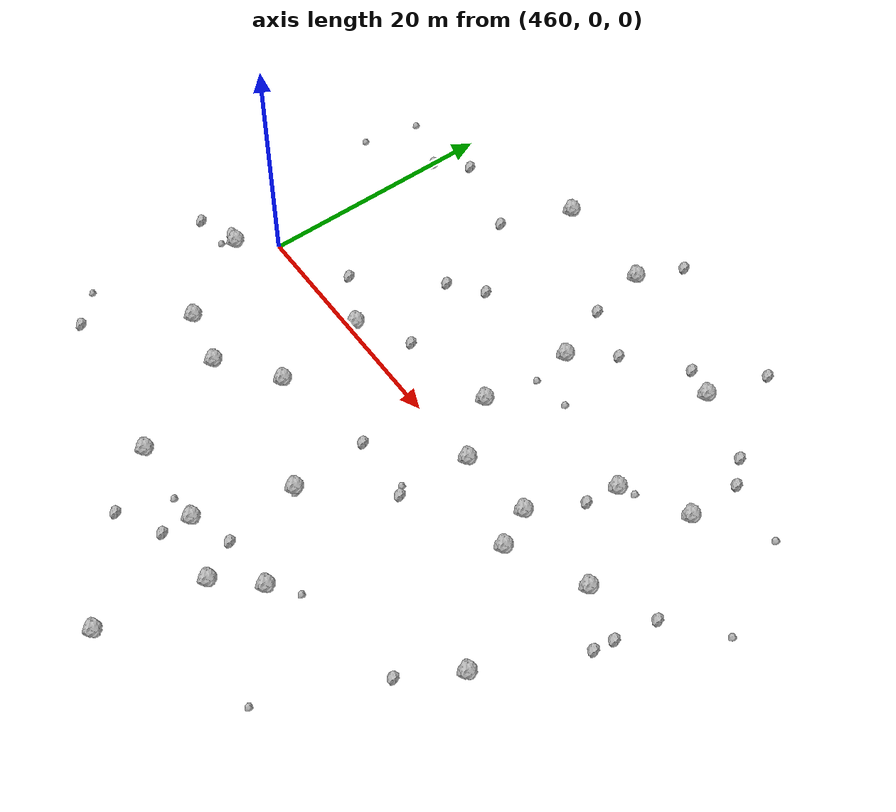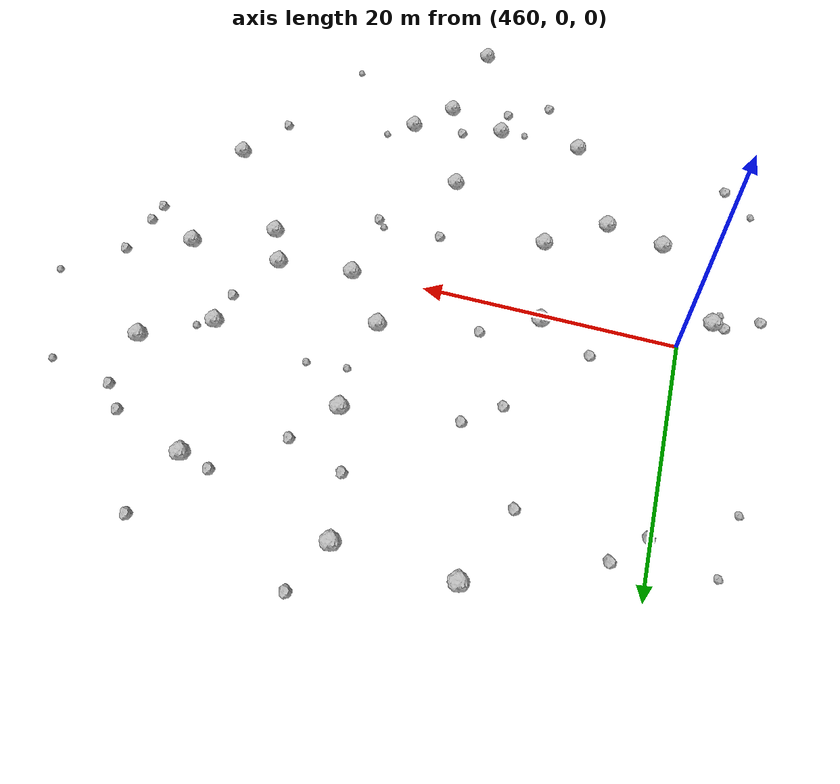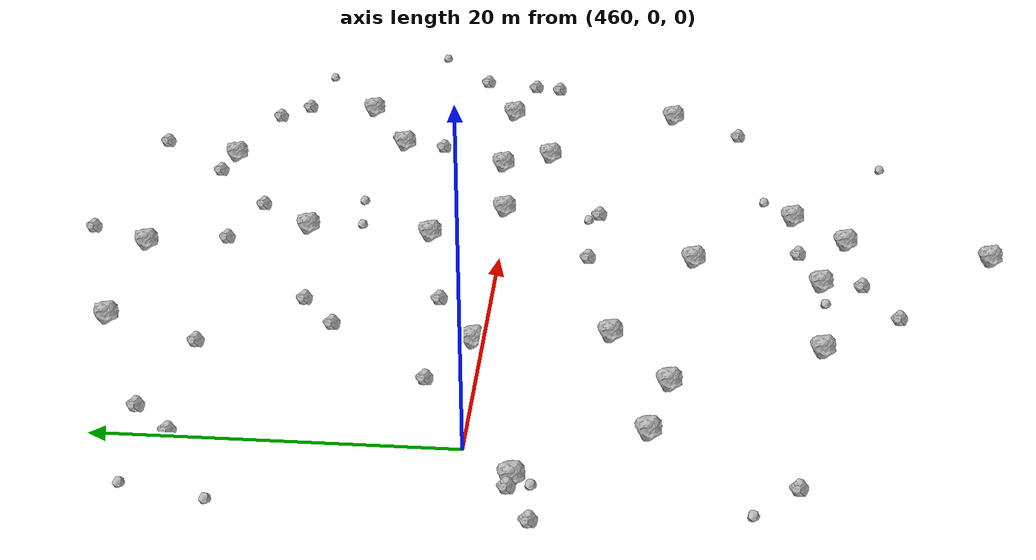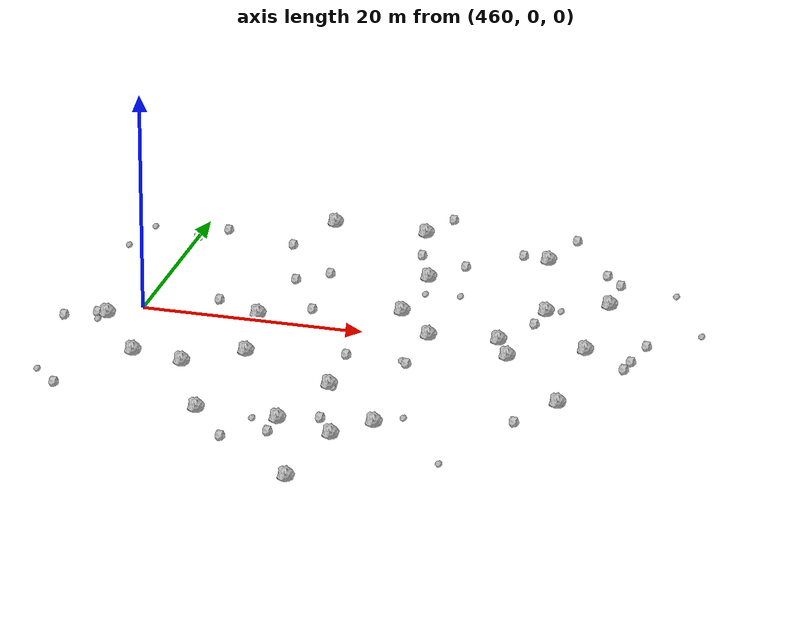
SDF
<sdf version="1.6">
 <world name="default">
  <include><uri>model://sun</uri></include>
  <model name="rock1_12_4">
   <include><uri>model://rock1</uri><pose>499.80383578167346 0.8082794287217787 0.5 0 0 0</pose></include>
  </model>
  <model name="rock1_12_5">
   <include><uri>model://rock1</uri><pose>499.6729726960399 10.672696156044239 0.5 0 0 0</pose></include>
  </model>
  <model name="rock1_12_6">
   <include><uri>model://rock1</uri><pose>492.0641143444364 0.8792199120641868 0.5 0 0 0</pose></include>
  </model>
  <model name="rock1_12_7">
   <include><uri>model://rock1</uri><pose>485.9526224685999 0.23629088025637657 0.5 0 0 0</pose></include>
  </model>
  <model name="rock1_12_8">
   <include><uri>model://rock1</uri><pose>479.9643023352144 21.920231082274057 0.5 0 0 0</pose></include>
  </model>
  <model name="rock1_12_9">
   <include><uri>model://rock1</uri><pose>482.3958565108509 4.5669969244764985 0.5 0 0 0</pose></include>
  </model>
  <model name="rock1_12_10">
   <include><uri>model://rock1</uri><pose>480.44825305162715 -11.846455012147668 0.5 0 0 0</pose></include>
  </model>
  <model name="rock1_12_11">
   <include><uri>model://rock1</uri><pose>483.2498074785723 -21.19223633733783 0.5 0 0 0</pose></include>
  </model>
  <model name="rock1_12_12">
   <include><uri>model://rock1</uri><pose>470.39427499492746 0.604859064650821 0.5 0 0 0</pose></include>
  </model>
  <model name="rock1_12_13">
   <include><uri>model://rock1</uri><pose>457.6143570755785 -2.7554110209737743 0.5 0 0 0</pose></include>
  </model>
  <model name="rock1_12_14">
   <include><uri>model://rock1</uri><pose>493.5859015132169 -2.1456100347031892 0.5 0 0 0</pose></include>
  </model>
  <model name="rock1_12_15">
   <include><uri>model://rock1</uri><pose>471.6458113379914 -7.184664122847316 0.5 0 0 0</pose></include>
  </model>
  <model name="rock1_12_16">
   <include><uri>model://rock1</uri><pose>494.6150053115148 7.817946095866567 0.5 0 0 0</pose></include>
  </model>
  <model name="rock1_12_17">
   <include><uri>model://rock1</uri><pose>492.16271287085993 18.8461210487514 0.5 0 0 0</pose></include>
  </model>
  <model name="rock1_12_18">
   <include><uri>model://rock1</uri><pose>478.13415540013625 -19.465455060185022 0.5 0 0 0</pose></include>
  </model>
  <model name="rock1_12_19">
   <include><uri>model://rock1</uri><pose>470.9166484450568 -19.23757958963101 0.5 0 0 0</pose></include>
  </model>
  <model name="rock1_12_20">
   <include><uri>model://rock1</uri><pose>471.34002211636937 22.090935653440475 0.5 0 0 0</pose></include>
  </model>
  <model name="rock1_12_21">
   <include><uri>model://rock1</uri><pose>462.1959720693229 -9.636172189741771 0.5 0 0 0</pose></include>
  </model>
  <model name="rock1_12_22">
   <include><uri>model://rock1</uri><pose>486.10835087408236 -18.03271562529055 0.5 0 0 0</pose></include>
  </model>
  <model name="rock1_12_23">
   <include><uri>model://rock1</uri><pose>466.92074521230603 -10.64090655474827 0.5 0 0 0</pose></include>
  </model>
  <model name="rock1_12_24">
   <include><uri>model://rock1</uri><pose>481.94162868176204 -29.88847477265042 0.5 0 0 0</pose></include>
  </model>
  <model name="rock1_12_25">
   <include><uri>model://rock1</uri><pose>482.75353789399514 12.300874487955376 0.5 0 0 0</pose></include>
  </model>
  <model name="rock1_12_26">
   <include><uri>model://rock1</uri><pose>500.015780791032 -10.263997618852528 0.5 0 0 0</pose></include>
  </model>
  <model name="rock2_12_0">
   <include><uri>model://rock2</uri><pose>485.3223523668847 15.653023302167114 0.3 0 0 0</pose></include>
  </model>
  <model name="rock2_12_1">
   <include><uri>model://rock2</uri><pose>457.66125397847486 -17.409460358360313 0.3 0 0 0</pose></include>
  </model>
  <model name="rock2_12_2">
   <include><uri>model://rock2</uri><pose>493.6371839267754 23.924704659023902 0.3 0 0 0</pose></include>
  </model>
  <model name="rock2_12_3">
   <include><uri>model://rock2</uri><pose>471.4388393121767 8.899159118474081 0.3 0 0 0</pose></include>
  </model>
  <model name="rock2_12_4">
   <include><uri>model://rock2</uri><pose>456.68644730927105 -2.581448337804357 0.3 0 0 0</pose></include>
  </model>
  <model name="rock2_12_5">
   <include><uri>model://rock2</uri><pose>499.6513069646777 15.218757769939934 0.3 0 0 0</pose></include>
  </model>
  <model name="rock2_12_6">
   <include><uri>model://rock2</uri><pose>474.6486409146683 3.0431646925096203 0.3 0 0 0</pose></include>
  </model>
  <model name="rock2_12_7">
   <include><uri>model://rock2</uri><pose>489.7447354503136 19.418595024812056 0.3 0 0 0</pose></include>
  </model>
  <model name="rock2_12_8">
   <include><uri>model://rock2</uri><pose>466.1888729694615 2.8254173641150615 0.3 0 0 0</pose></include>
  </model>
  <model name="rock2_12_9">
   <include><uri>model://rock2</uri><pose>494.2301572888314 5.125561903107709 0.3 0 0 0</pose></include>
  </model>
  <model name="rock2_12_10">
   <include><uri>model://rock2</uri><pose>477.98691080046893 -21.885871808806755 0.3 0 0 0</pose></include>
  </model>
  <model name="rock2_12_11">
   <include><uri>model://rock2</uri><pose>503.8559990014188 -2.0643600415037966 0.3 0 0 0</pose></include>
  </model>
  <model name="rock2_12_12">
   <include><uri>model://rock2</uri><pose>454.0303263692032 -3.916212830883584 0.3 0 0 0</pose></include>
  </model>
  <model name="rock2_12_13">
   <include><uri>model://rock2</uri><pose>474.0407626443177 10.973103619810516 0.3 0 0 0</pose></include>
  </model>
  <model name="rock2_12_14">
   <include><uri>model://rock2</uri><pose>485.5919474825659 -5.828751039520739 0.3 0 0 0</pose></include>
  </model>
  <model name="rock2_12_15">
   <include><uri>model://rock2</uri><pose>480.8866511184072 17.08525413048679 0.3 0 0 0</pose></include>
  </model>
  <model name="rock2_12_16">
   <include><uri>model://rock2</uri><pose>480.13801638915476 -5.4130867907825575 0.3 0 0 0</pose></include>
  </model>
  <model name="rock2_12_17">
   <include><uri>model://rock2</uri><pose>462.3903627032696 18.053645750125334 0.3 0 0 0</pose></include>
  </model>
  <model name="rock2_12_18">
   <include><uri>model://rock2</uri><pose>481.5906310290934 25.71110288076398 0.3 0 0 0</pose></include>
  </model>
  <model name="rock2_12_19">
   <include><uri>model://rock2</uri><pose>504.6970997916439 3.1341144408871955 0.3 0 0 0</pose></include>
  </model>
  <model name="rock2_12_20">
   <include><uri>model://rock2</uri><pose>504.10055718549705 -0.37332060090069774 0.3 0 0 0</pose></include>
  </model>
  <model name="rock2_12_21">
   <include><uri>model://rock2</uri><pose>474.44855399794614 -23.81546343763221 0.3 0 0 0</pose></include>
  </model>
  <model name="rock2_12_22">
   <include><uri>model://rock2</uri><pose>498.0371261347505 17.00848525267324 0.3 0 0 0</pose></include>
  </model>
  <model name="rock2_12_23">
   <include><uri>model://rock2</uri><pose>481.50495749074247 -18.22953570329429 0.3 0 0 0</pose></include>
  </model>
  <model name="rock2_12_24">
   <include><uri>model://rock2</uri><pose>497.3390867834636 -14.71745718035741 0.3 0 0 0</pose></include>
  </model>
  <model name="rock2_12_25">
   <include><uri>model://rock2</uri><pose>469.0057550400757 16.31104301305838 0.3 0 0 0</pose></include>
  </model>
  <model name="rock2_12_26">
   <include><uri>model://rock2</uri><pose>460.18245315967573 15.780315797684054 0.3 0 0 0</pose></include>
  </model>
  <model name="rock3_12_0">
   <include><uri>model://rock3</uri><pose>495.7546880840684 8.50119787970354 0.2 0 0 0</pose></include>
  </model>
  <model name="rock3_12_1">
   <include><uri>model://rock3</uri><pose>475.90947924428326 -19.66118757278186 0.2 0 0 0</pose></include>
  </model>
  <model name="rock3_12_2">
   <include><uri>model://rock3</uri><pose>455.6008166033395 17.15808430480257 0.2 0 0 0</pose></include>
  </model>
  <model name="rock3_12_3">
   <include><uri>model://rock3</uri><pose>454.5981003798353 12.464901898011277 0.2 0 0 0</pose></include>
  </model>
  <model name="rock3_12_4">
   <include><uri>model://rock3</uri><pose>480.80078731042676 -12.06412642258391 0.2 0 0 0</pose></include>
  </model>
  <model name="rock3_12_5">
   <include><uri>model://rock3</uri><pose>484.958603193059 -5.2258988564503355 0.2 0 0 0</pose></include>
  </model>
  <model name="rock3_12_6">
   <include><uri>model://rock3</uri><pose>508.7822001318075 6.548198978453847 0.2 0 0 0</pose></include>
  </model>
  <model name="rock3_12_7">
   <include><uri>model://rock3</uri><pose>504.846681752693 14.34278342348842 0.2 0 0 0</pose></include>
  </model>
  <model name="rock3_12_8">
   <include><uri>model://rock3</uri><pose>483.30669820134943 8.943169976186674 0.2 0 0 0</pose></include>
  </model>
  <model name="rock3_12_9">
   <include><uri>model://rock3</uri><pose>486.42278063482735 9.28696530495479 0.2 0 0 0</pose></include>
  </model>
  <model name="rock3_12_10">
   <include><uri>model://rock3</uri><pose>457.02447562161905 -3.8167307257169334 0.2 0 0 0</pose></include>
  </model>
  <model name="rock3_12_11">
   <include><uri>model://rock3</uri><pose>455.3170696106297 -15.09170098823157 0.2 0 0 0</pose></include>
  </model>
  <model name="rock3_12_12">
   <include><uri>model://rock3</uri><pose>488.15117855643035 -16.318030467146208 0.2 0 0 0</pose></include>
  </model>
  <model name="rock3_12_13">
   <include><uri>model://rock3</uri><pose>493.25478470186886 -24.032507128290867 0.2 0 0 0</pose></include>
  </model>
 </world>
</sdf>
